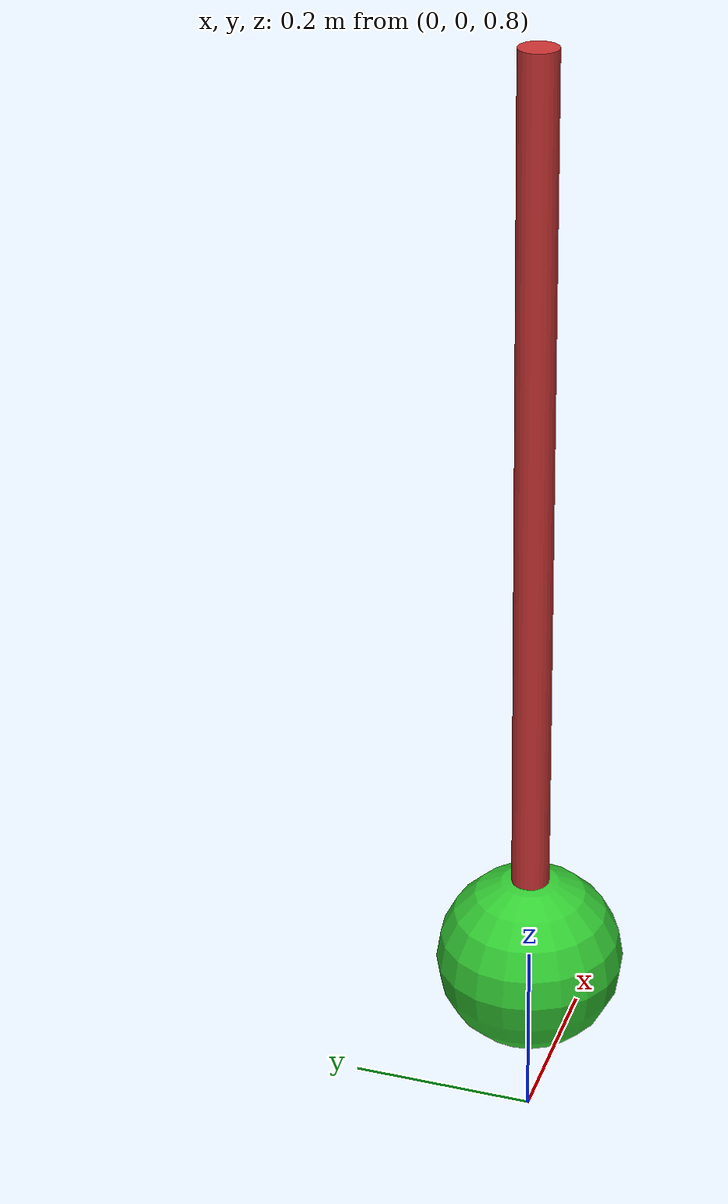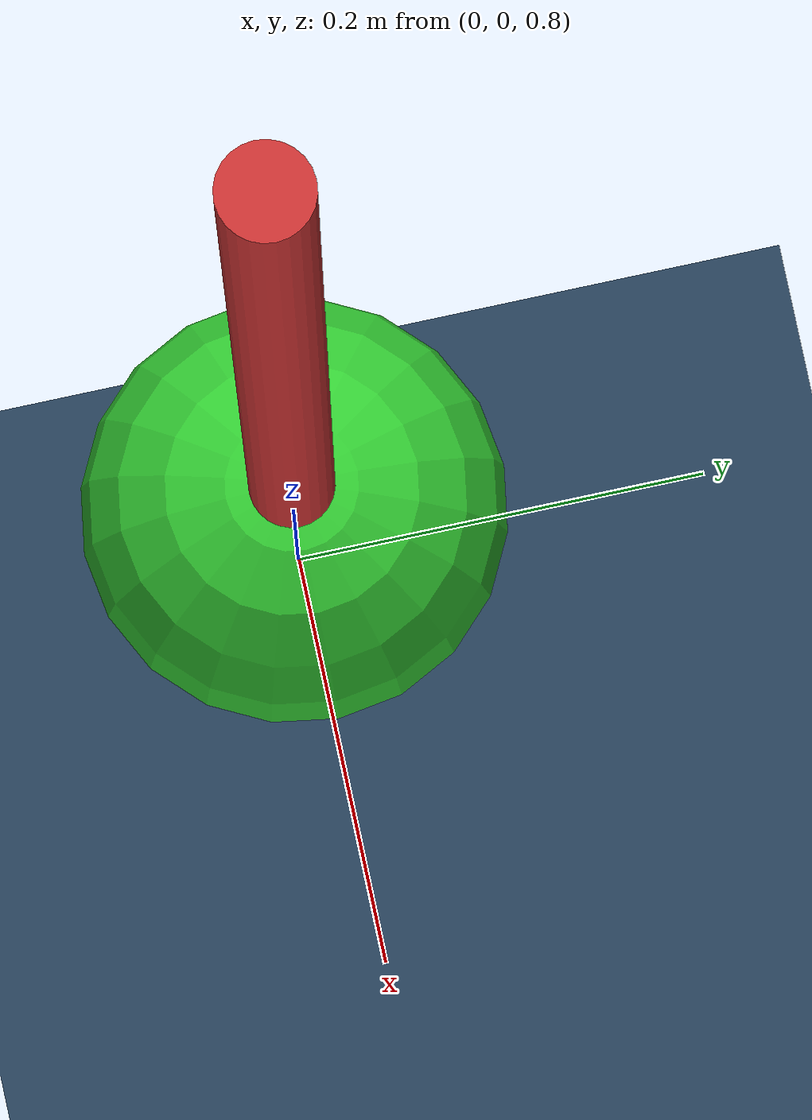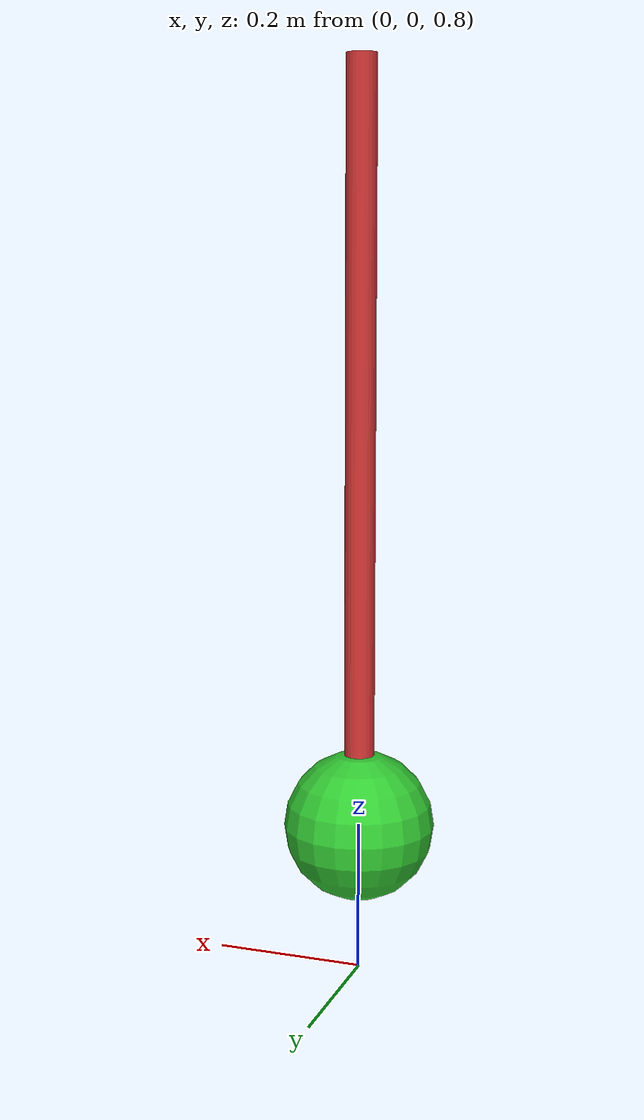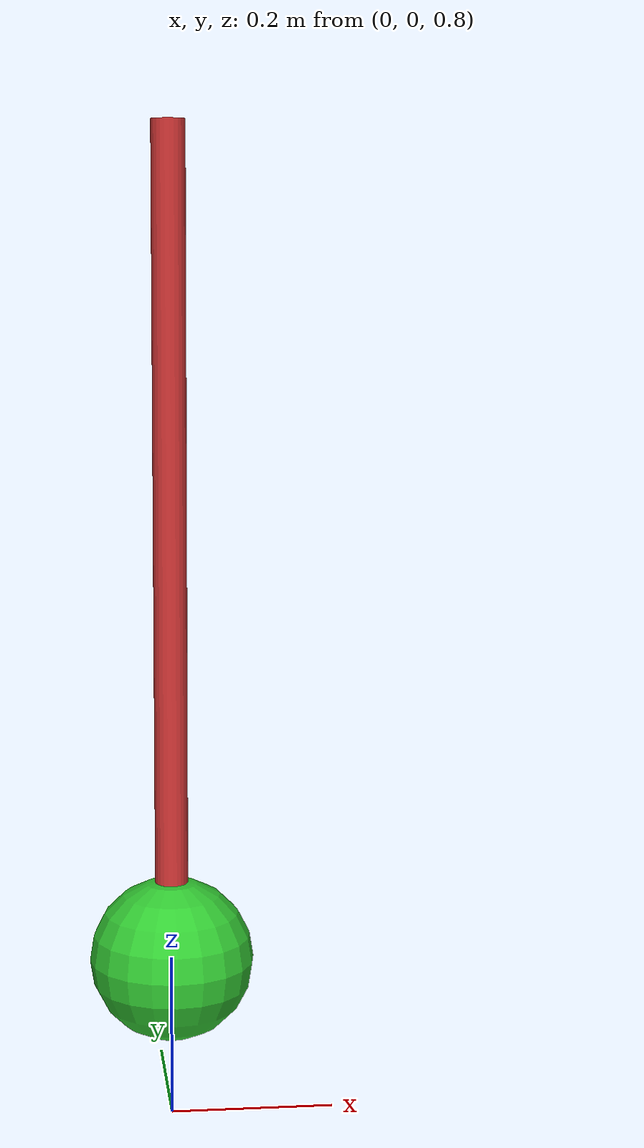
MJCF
<mujoco model="pendulum">
  <compiler angle="radian" coordinate="local"/>

  <option timestep="0.01" gravity="0 0 -9.81"/>

  <asset>
    <texture name="grid" type="2d" builtin="checker" rgb1=".1 .2 .3"
             rgb2=".2 .3 .4" width="300" height="300"/>
    <material name="grid" texture="grid" texrepeat="8 8" reflectance=".2"/>
  </asset>

  <worldbody>
    <geom size="1 1 .02" type="plane" material="grid"/>
    <light diffuse=".5 .5 .5" pos="0 0 3" dir="0 0 -1"/>

    <!-- Fixed pivot point -->
    <body name="pivot" pos="0 0 2">
      <!-- Pendulum rod -->
      <body name="pendulum" pos="0 0 -0.5">
        <joint name="pendulum_joint" type="hinge" axis="1 0 0"
               pos="0 0 0.5" limited="false"/>
        <geom name="rod" type="cylinder" size="0.02 0.5"
              rgba="0.8 0.2 0.2 1" pos="0 0 0"/>
        <!-- Bob at the end -->
        <geom name="bob" type="sphere" size="0.1"
              rgba="0.2 0.8 0.2 1" pos="0 0 -0.5"/>
      </body>
    </body>
  </worldbody>

  <actuator>
    <motor name="pendulum_motor" joint="pendulum_joint"
           gear="1" ctrllimited="true" ctrlrange="-50 50"/>
  </actuator>

  <sensor>
    <jointpos name="angle_sensor" joint="pendulum_joint" noise="0.01"/>
    <jointvel name="velocity_sensor" joint="pendulum_joint" noise="0.05"/>
  </sensor>
</mujoco>
